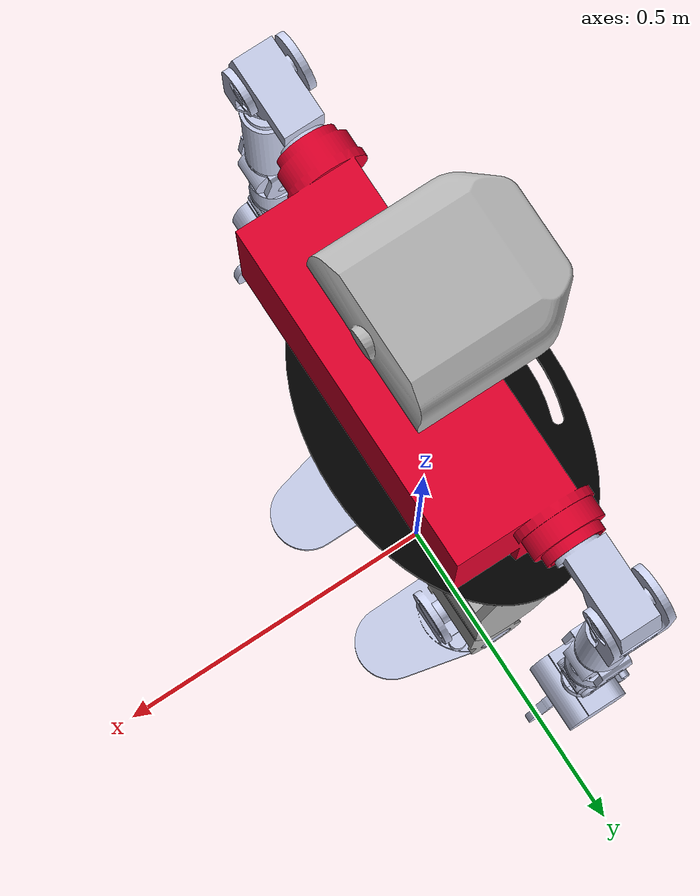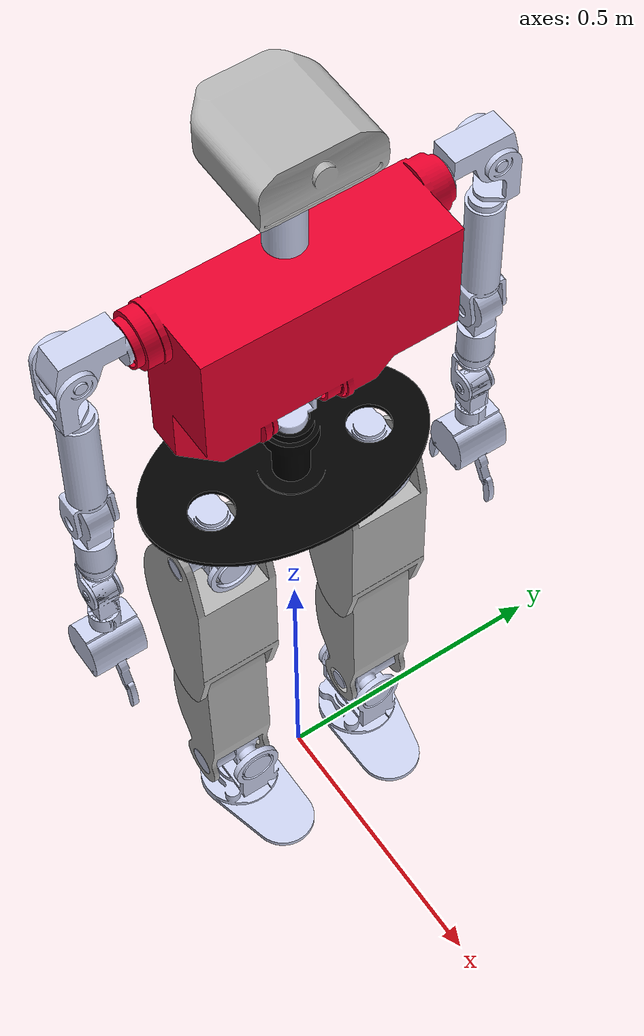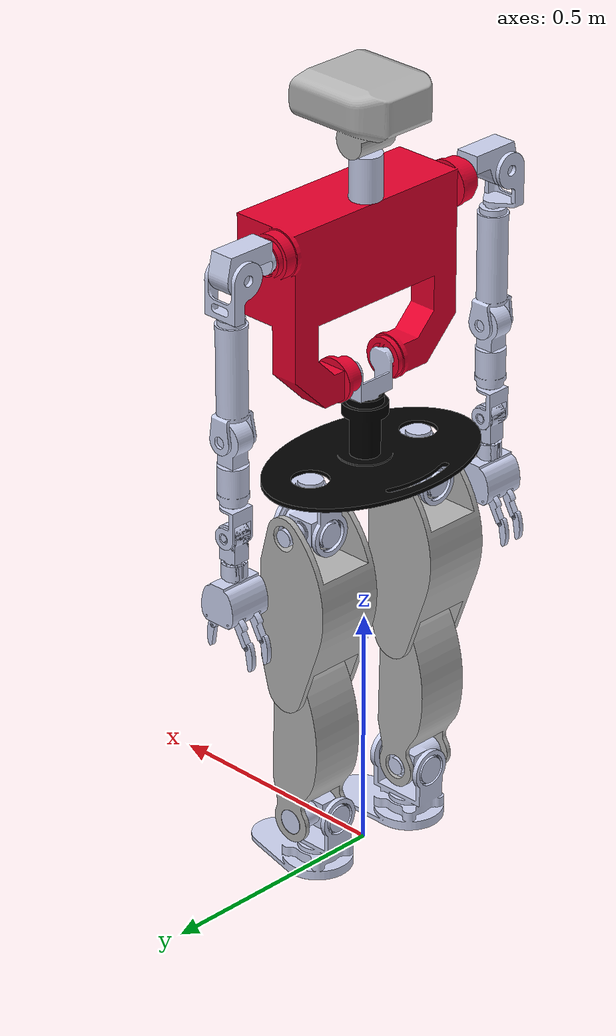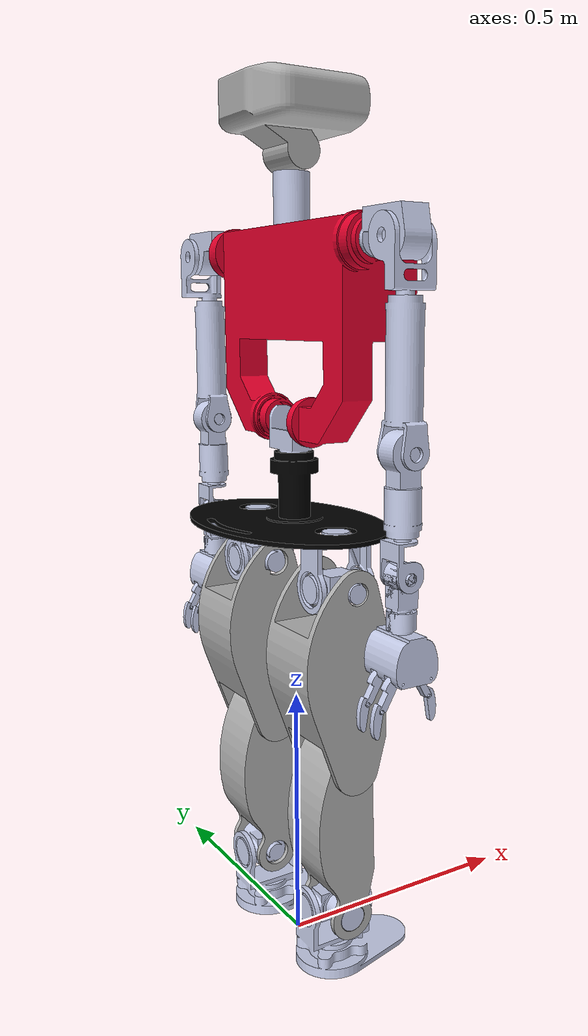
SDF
<?xml version="1.0"?>
<sdf version="1.7">
  <model name="TEO_lacqueyFetch">

    <include merge="true">
      <uri>model://teo</uri>
    </include>

    <include merge="true">
      <pose>0 -0.34692 0.8122 0 -0 0</pose>
      <uri>model://teo_lacqueyFetch/parts/rightLacqueyFetch.sdf</uri>
    </include>

    <joint name="RightWrist" type="fixed">
      <parent>RightSensorPlate_link</parent>
      <child>RightWrist_link</child>
    </joint>

    <include merge="true">
      <pose>0 0.34692 0.8122 0 -0 0</pose>
      <uri>model://teo_lacqueyFetch/parts/leftLacqueyFetch.sdf</uri>
    </include>

    <joint name="LeftWrist" type="fixed">
      <parent>LeftSensorPlate_link</parent>
      <child>LeftWrist_link</child>
    </joint>

    <plugin name="gzyarp::RobotInterface" filename="gz-sim-yarp-robotinterface-system">
      <yarpRobotInterfaceConfigurationFile>model://teo_lacqueyFetch/conf/teo_lacqueyFetch_nws_yarp.xml</yarpRobotInterfaceConfigurationFile>
    </plugin>

  </model>
</sdf>
